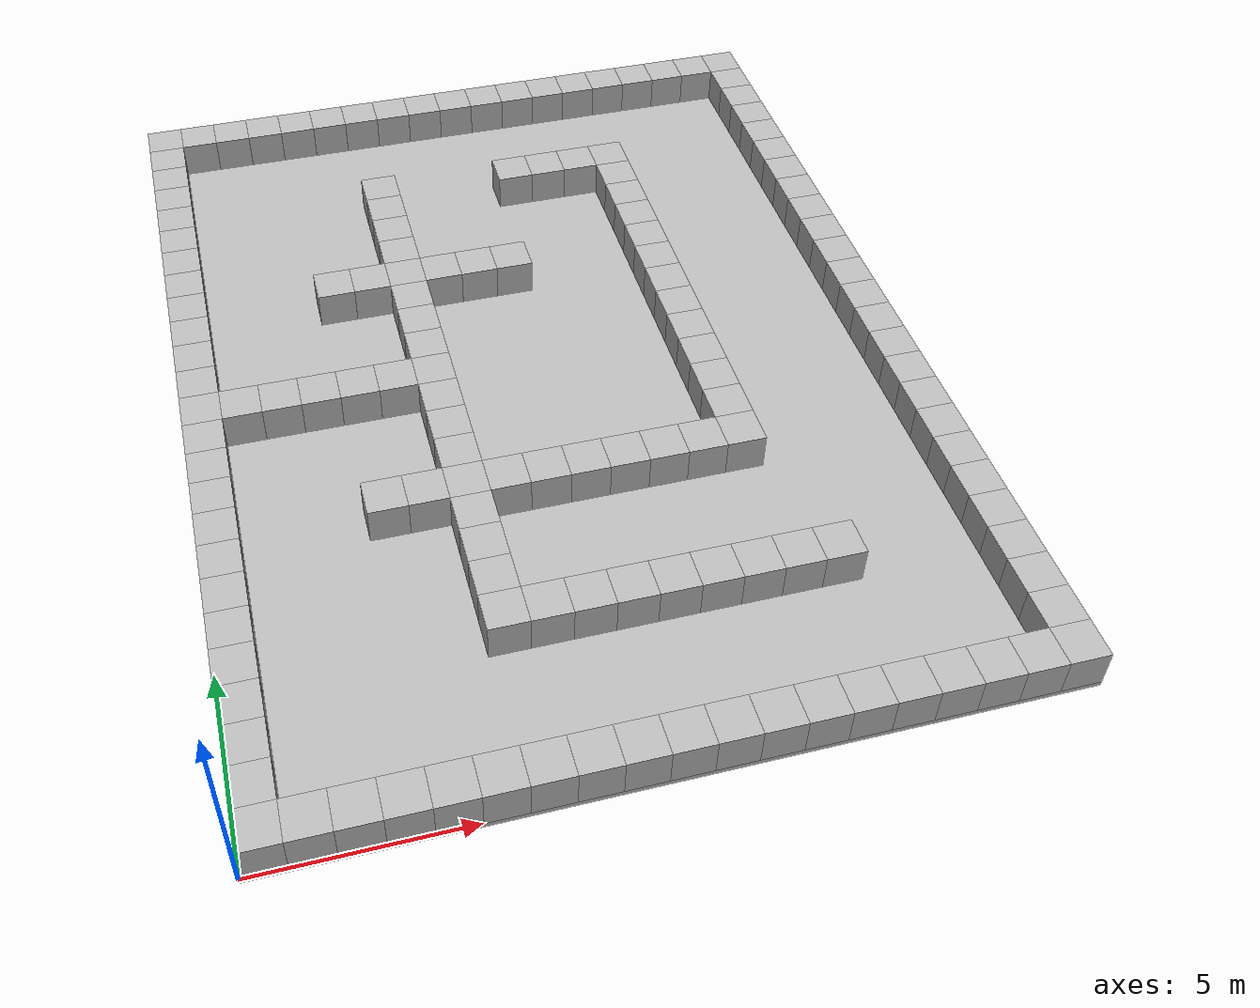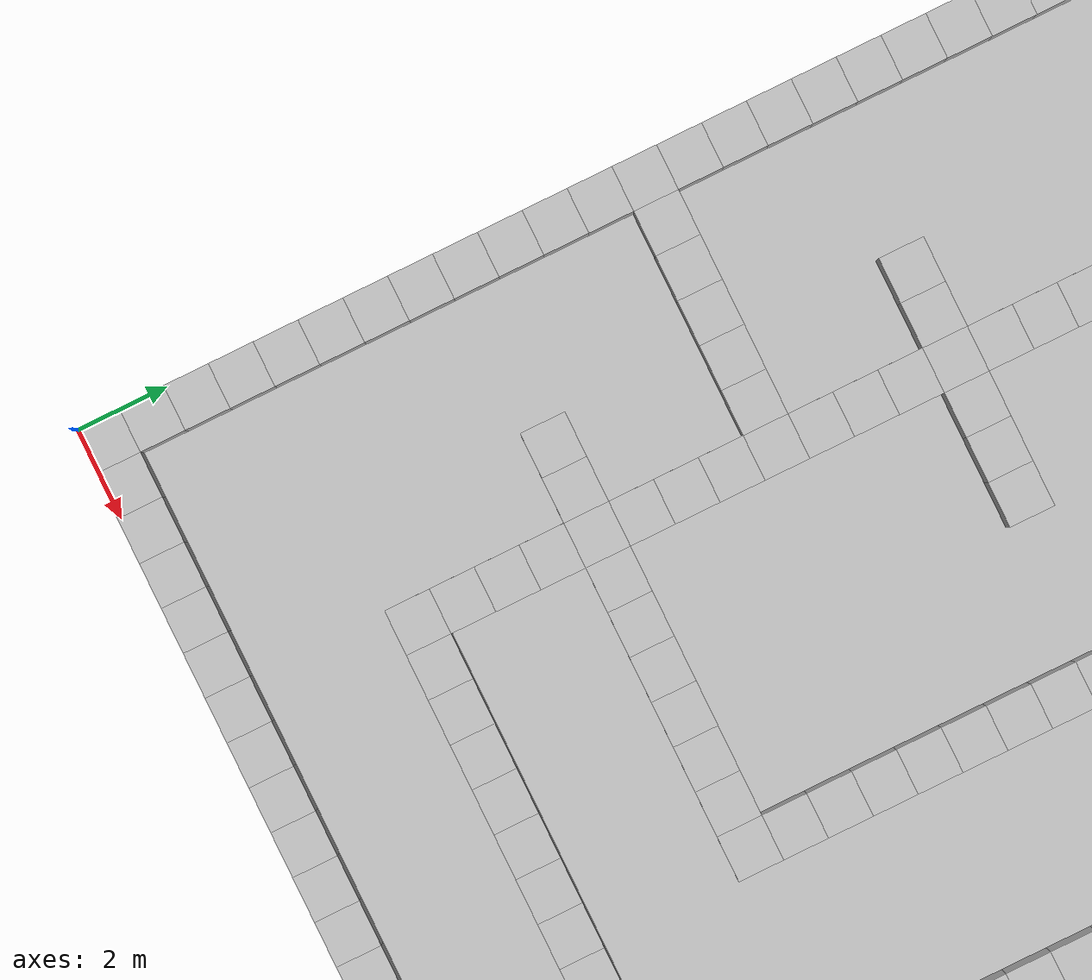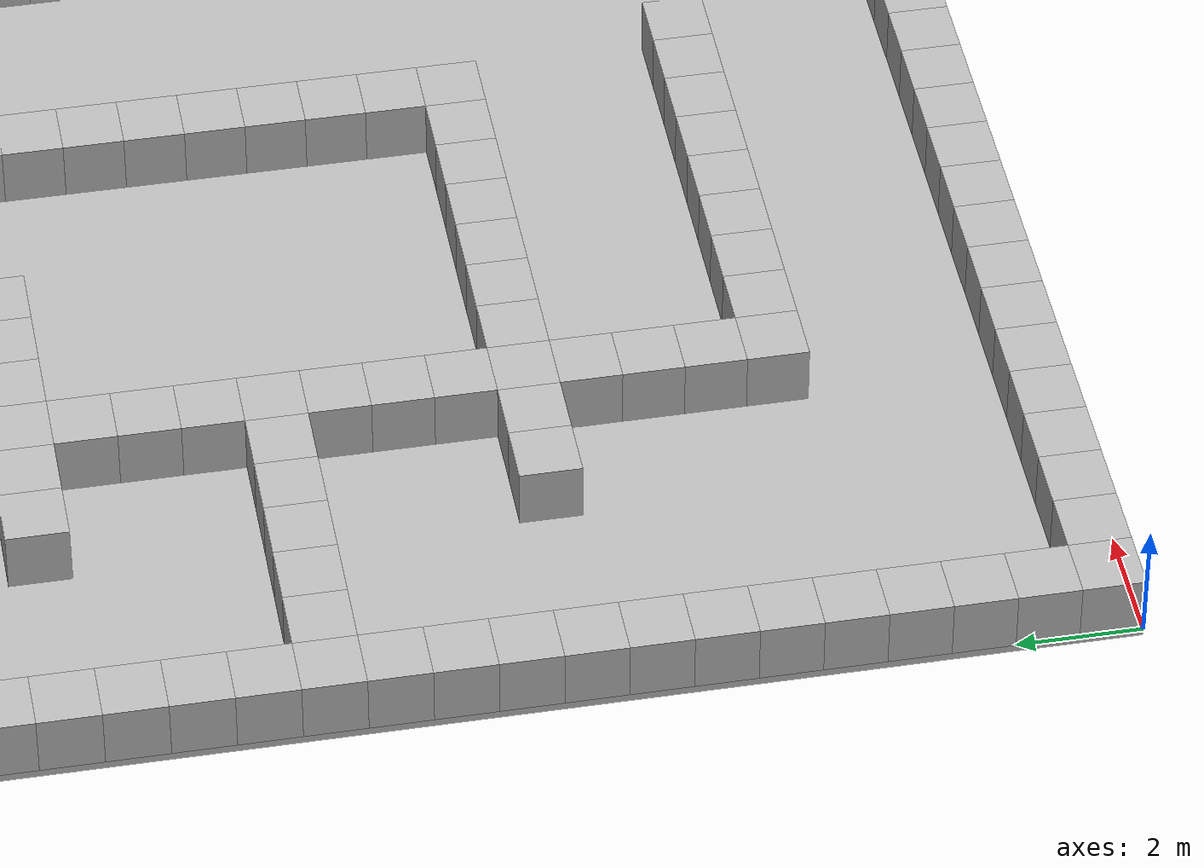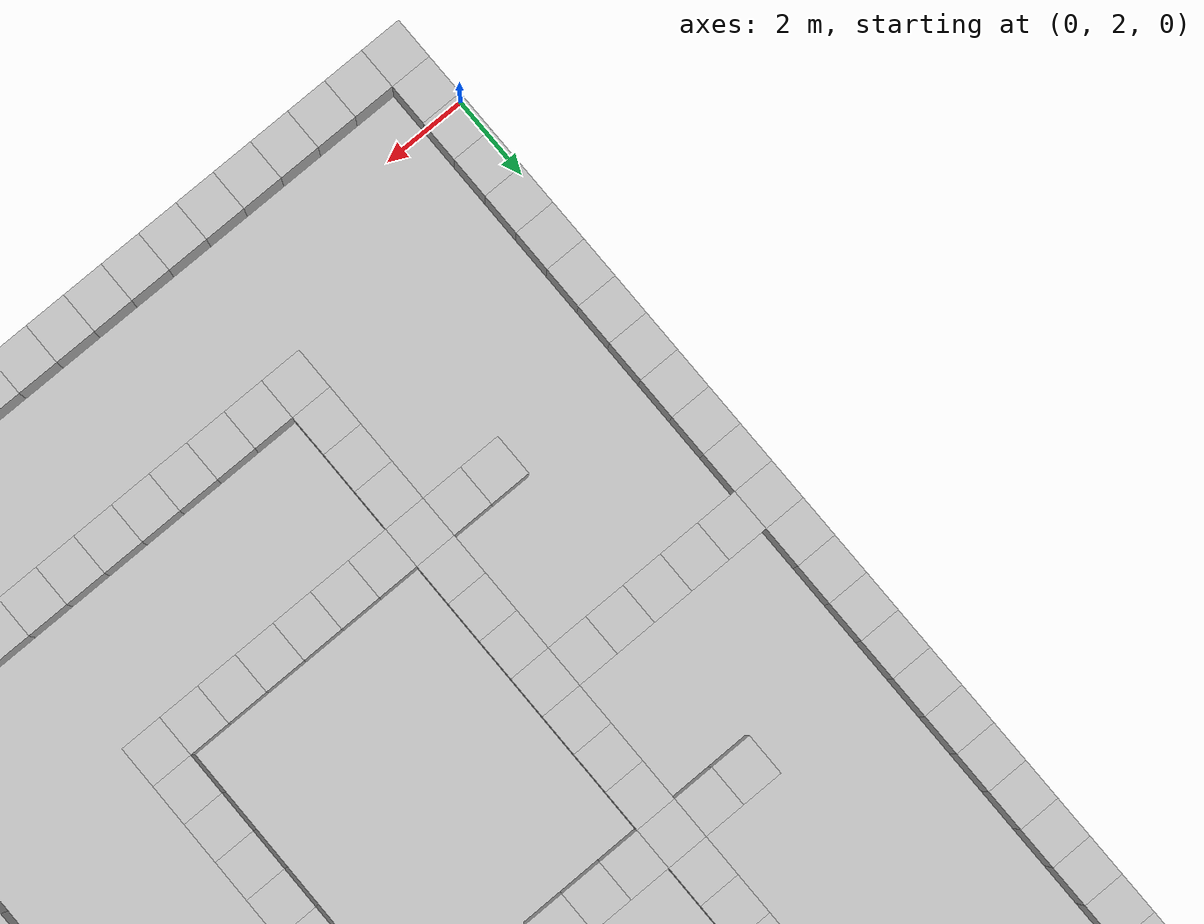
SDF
<sdf version="1.4">
 <world name="default">
  <model name="floor">
   <pose>9.5 12.5 -0.0625 0 0 0</pose>
   <static>true</static>
   <link name="link">
    <collision name="collision"><geometry><box><size>19.0 25.0 0.125</size></box></geometry></collision>
    <visual name="visual"><geometry><box><size>19.0 25.0 0.125</size></box></geometry></visual>
   </link>
  </model>
  <model name="box_0_0">
   <pose>0.5 0.5 0.5 0 0 0</pose>
   <static>true</static>
   <link name="link">
    <collision name="collision"><geometry><box><size>1.0 1.0 1.0</size></box></geometry></collision>
    <visual name="visual"><geometry><box><size>1.0 1.0 1.0</size></box></geometry></visual>
   </link>
  </model>
  <model name="box_0_1">
   <pose>0.5 1.5 0.5 0 0 0</pose>
   <static>true</static>
   <link name="link">
    <collision name="collision"><geometry><box><size>1.0 1.0 1.0</size></box></geometry></collision>
    <visual name="visual"><geometry><box><size>1.0 1.0 1.0</size></box></geometry></visual>
   </link>
  </model>
  <model name="box_0_2">
   <pose>0.5 2.5 0.5 0 0 0</pose>
   <static>true</static>
   <link name="link">
    <collision name="collision"><geometry><box><size>1.0 1.0 1.0</size></box></geometry></collision>
    <visual name="visual"><geometry><box><size>1.0 1.0 1.0</size></box></geometry></visual>
   </link>
  </model>
  <model name="box_0_3">
   <pose>0.5 3.5 0.5 0 0 0</pose>
   <static>true</static>
   <link name="link">
    <collision name="collision"><geometry><box><size>1.0 1.0 1.0</size></box></geometry></collision>
    <visual name="visual"><geometry><box><size>1.0 1.0 1.0</size></box></geometry></visual>
   </link>
  </model>
  <model name="box_0_4">
   <pose>0.5 4.5 0.5 0 0 0</pose>
   <static>true</static>
   <link name="link">
    <collision name="collision"><geometry><box><size>1.0 1.0 1.0</size></box></geometry></collision>
    <visual name="visual"><geometry><box><size>1.0 1.0 1.0</size></box></geometry></visual>
   </link>
  </model>
  <model name="box_0_5">
   <pose>0.5 5.5 0.5 0 0 0</pose>
   <static>true</static>
   <link name="link">
    <collision name="collision"><geometry><box><size>1.0 1.0 1.0</size></box></geometry></collision>
    <visual name="visual"><geometry><box><size>1.0 1.0 1.0</size></box></geometry></visual>
   </link>
  </model>
  <model name="box_0_6">
   <pose>0.5 6.5 0.5 0 0 0</pose>
   <static>true</static>
   <link name="link">
    <collision name="collision"><geometry><box><size>1.0 1.0 1.0</size></box></geometry></collision>
    <visual name="visual"><geometry><box><size>1.0 1.0 1.0</size></box></geometry></visual>
   </link>
  </model>
  <model name="box_0_7">
   <pose>0.5 7.5 0.5 0 0 0</pose>
   <static>true</static>
   <link name="link">
    <collision name="collision"><geometry><box><size>1.0 1.0 1.0</size></box></geometry></collision>
    <visual name="visual"><geometry><box><size>1.0 1.0 1.0</size></box></geometry></visual>
   </link>
  </model>
  <model name="box_0_8">
   <pose>0.5 8.5 0.5 0 0 0</pose>
   <static>true</static>
   <link name="link">
    <collision name="collision"><geometry><box><size>1.0 1.0 1.0</size></box></geometry></collision>
    <visual name="visual"><geometry><box><size>1.0 1.0 1.0</size></box></geometry></visual>
   </link>
  </model>
  <model name="box_0_9">
   <pose>0.5 9.5 0.5 0 0 0</pose>
   <static>true</static>
   <link name="link">
    <collision name="collision"><geometry><box><size>1.0 1.0 1.0</size></box></geometry></collision>
    <visual name="visual"><geometry><box><size>1.0 1.0 1.0</size></box></geometry></visual>
   </link>
  </model>
  <model name="box_0_10">
   <pose>0.5 10.5 0.5 0 0 0</pose>
   <static>true</static>
   <link name="link">
    <collision name="collision"><geometry><box><size>1.0 1.0 1.0</size></box></geometry></collision>
    <visual name="visual"><geometry><box><size>1.0 1.0 1.0</size></box></geometry></visual>
   </link>
  </model>
  <model name="box_0_11">
   <pose>0.5 11.5 0.5 0 0 0</pose>
   <static>true</static>
   <link name="link">
    <collision name="collision"><geometry><box><size>1.0 1.0 1.0</size></box></geometry></collision>
    <visual name="visual"><geometry><box><size>1.0 1.0 1.0</size></box></geometry></visual>
   </link>
  </model>
  <model name="box_0_12">
   <pose>0.5 12.5 0.5 0 0 0</pose>
   <static>true</static>
   <link name="link">
    <collision name="collision"><geometry><box><size>1.0 1.0 1.0</size></box></geometry></collision>
    <visual name="visual"><geometry><box><size>1.0 1.0 1.0</size></box></geometry></visual>
   </link>
  </model>
  <model name="box_0_13">
   <pose>0.5 13.5 0.5 0 0 0</pose>
   <static>true</static>
   <link name="link">
    <collision name="collision"><geometry><box><size>1.0 1.0 1.0</size></box></geometry></collision>
    <visual name="visual"><geometry><box><size>1.0 1.0 1.0</size></box></geometry></visual>
   </link>
  </model>
  <model name="box_0_14">
   <pose>0.5 14.5 0.5 0 0 0</pose>
   <static>true</static>
   <link name="link">
    <collision name="collision"><geometry><box><size>1.0 1.0 1.0</size></box></geometry></collision>
    <visual name="visual"><geometry><box><size>1.0 1.0 1.0</size></box></geometry></visual>
   </link>
  </model>
  <model name="box_0_15">
   <pose>0.5 15.5 0.5 0 0 0</pose>
   <static>true</static>
   <link name="link">
    <collision name="collision"><geometry><box><size>1.0 1.0 1.0</size></box></geometry></collision>
    <visual name="visual"><geometry><box><size>1.0 1.0 1.0</size></box></geometry></visual>
   </link>
  </model>
  <model name="box_0_16">
   <pose>0.5 16.5 0.5 0 0 0</pose>
   <static>true</static>
   <link name="link">
    <collision name="collision"><geometry><box><size>1.0 1.0 1.0</size></box></geometry></collision>
    <visual name="visual"><geometry><box><size>1.0 1.0 1.0</size></box></geometry></visual>
   </link>
  </model>
  <model name="box_0_17">
   <pose>0.5 17.5 0.5 0 0 0</pose>
   <static>true</static>
   <link name="link">
    <collision name="collision"><geometry><box><size>1.0 1.0 1.0</size></box></geometry></collision>
    <visual name="visual"><geometry><box><size>1.0 1.0 1.0</size></box></geometry></visual>
   </link>
  </model>
  <model name="box_0_18">
   <pose>0.5 18.5 0.5 0 0 0</pose>
   <static>true</static>
   <link name="link">
    <collision name="collision"><geometry><box><size>1.0 1.0 1.0</size></box></geometry></collision>
    <visual name="visual"><geometry><box><size>1.0 1.0 1.0</size></box></geometry></visual>
   </link>
  </model>
  <model name="box_0_19">
   <pose>0.5 19.5 0.5 0 0 0</pose>
   <static>true</static>
   <link name="link">
    <collision name="collision"><geometry><box><size>1.0 1.0 1.0</size></box></geometry></collision>
    <visual name="visual"><geometry><box><size>1.0 1.0 1.0</size></box></geometry></visual>
   </link>
  </model>
  <model name="box_0_20">
   <pose>0.5 20.5 0.5 0 0 0</pose>
   <static>true</static>
   <link name="link">
    <collision name="collision"><geometry><box><size>1.0 1.0 1.0</size></box></geometry></collision>
    <visual name="visual"><geometry><box><size>1.0 1.0 1.0</size></box></geometry></visual>
   </link>
  </model>
  <model name="box_0_21">
   <pose>0.5 21.5 0.5 0 0 0</pose>
   <static>true</static>
   <link name="link">
    <collision name="collision"><geometry><box><size>1.0 1.0 1.0</size></box></geometry></collision>
    <visual name="visual"><geometry><box><size>1.0 1.0 1.0</size></box></geometry></visual>
   </link>
  </model>
  <model name="box_0_22">
   <pose>0.5 22.5 0.5 0 0 0</pose>
   <static>true</static>
   <link name="link">
    <collision name="collision"><geometry><box><size>1.0 1.0 1.0</size></box></geometry></collision>
    <visual name="visual"><geometry><box><size>1.0 1.0 1.0</size></box></geometry></visual>
   </link>
  </model>
  <model name="box_0_23">
   <pose>0.5 23.5 0.5 0 0 0</pose>
   <static>true</static>
   <link name="link">
    <collision name="collision"><geometry><box><size>1.0 1.0 1.0</size></box></geometry></collision>
    <visual name="visual"><geometry><box><size>1.0 1.0 1.0</size></box></geometry></visual>
   </link>
  </model>
  <model name="box_0_24">
   <pose>0.5 24.5 0.5 0 0 0</pose>
   <static>true</static>
   <link name="link">
    <collision name="collision"><geometry><box><size>1.0 1.0 1.0</size></box></geometry></collision>
    <visual name="visual"><geometry><box><size>1.0 1.0 1.0</size></box></geometry></visual>
   </link>
  </model>
  <model name="box_1_0">
   <pose>1.5 0.5 0.5 0 0 0</pose>
   <static>true</static>
   <link name="link">
    <collision name="collision"><geometry><box><size>1.0 1.0 1.0</size></box></geometry></collision>
    <visual name="visual"><geometry><box><size>1.0 1.0 1.0</size></box></geometry></visual>
   </link>
  </model>
  <model name="box_1_12">
   <pose>1.5 12.5 0.5 0 0 0</pose>
   <static>true</static>
   <link name="link">
    <collision name="collision"><geometry><box><size>1.0 1.0 1.0</size></box></geometry></collision>
    <visual name="visual"><geometry><box><size>1.0 1.0 1.0</size></box></geometry></visual>
   </link>
  </model>
  <model name="box_1_24">
   <pose>1.5 24.5 0.5 0 0 0</pose>
   <static>true</static>
   <link name="link">
    <collision name="collision"><geometry><box><size>1.0 1.0 1.0</size></box></geometry></collision>
    <visual name="visual"><geometry><box><size>1.0 1.0 1.0</size></box></geometry></visual>
   </link>
  </model>
  <model name="box_2_0">
   <pose>2.5 0.5 0.5 0 0 0</pose>
   <static>true</static>
   <link name="link">
    <collision name="collision"><geometry><box><size>1.0 1.0 1.0</size></box></geometry></collision>
    <visual name="visual"><geometry><box><size>1.0 1.0 1.0</size></box></geometry></visual>
   </link>
  </model>
  <model name="box_2_12">
   <pose>2.5 12.5 0.5 0 0 0</pose>
   <static>true</static>
   <link name="link">
    <collision name="collision"><geometry><box><size>1.0 1.0 1.0</size></box></geometry></collision>
    <visual name="visual"><geometry><box><size>1.0 1.0 1.0</size></box></geometry></visual>
   </link>
  </model>
  <model name="box_2_24">
   <pose>2.5 24.5 0.5 0 0 0</pose>
   <static>true</static>
   <link name="link">
    <collision name="collision"><geometry><box><size>1.0 1.0 1.0</size></box></geometry></collision>
    <visual name="visual"><geometry><box><size>1.0 1.0 1.0</size></box></geometry></visual>
   </link>
  </model>
  <model name="box_3_0">
   <pose>3.5 0.5 0.5 0 0 0</pose>
   <static>true</static>
   <link name="link">
    <collision name="collision"><geometry><box><size>1.0 1.0 1.0</size></box></geometry></collision>
    <visual name="visual"><geometry><box><size>1.0 1.0 1.0</size></box></geometry></visual>
   </link>
  </model>
  <model name="box_3_12">
   <pose>3.5 12.5 0.5 0 0 0</pose>
   <static>true</static>
   <link name="link">
    <collision name="collision"><geometry><box><size>1.0 1.0 1.0</size></box></geometry></collision>
    <visual name="visual"><geometry><box><size>1.0 1.0 1.0</size></box></geometry></visual>
   </link>
  </model>
  <model name="box_3_24">
   <pose>3.5 24.5 0.5 0 0 0</pose>
   <static>true</static>
   <link name="link">
    <collision name="collision"><geometry><box><size>1.0 1.0 1.0</size></box></geometry></collision>
    <visual name="visual"><geometry><box><size>1.0 1.0 1.0</size></box></geometry></visual>
   </link>
  </model>
  <model name="box_4_0">
   <pose>4.5 0.5 0.5 0 0 0</pose>
   <static>true</static>
   <link name="link">
    <collision name="collision"><geometry><box><size>1.0 1.0 1.0</size></box></geometry></collision>
    <visual name="visual"><geometry><box><size>1.0 1.0 1.0</size></box></geometry></visual>
   </link>
  </model>
  <model name="box_4_8">
   <pose>4.5 8.5 0.5 0 0 0</pose>
   <static>true</static>
   <link name="link">
    <collision name="collision"><geometry><box><size>1.0 1.0 1.0</size></box></geometry></collision>
    <visual name="visual"><geometry><box><size>1.0 1.0 1.0</size></box></geometry></visual>
   </link>
  </model>
  <model name="box_4_12">
   <pose>4.5 12.5 0.5 0 0 0</pose>
   <static>true</static>
   <link name="link">
    <collision name="collision"><geometry><box><size>1.0 1.0 1.0</size></box></geometry></collision>
    <visual name="visual"><geometry><box><size>1.0 1.0 1.0</size></box></geometry></visual>
   </link>
  </model>
  <model name="box_4_16">
   <pose>4.5 16.5 0.5 0 0 0</pose>
   <static>true</static>
   <link name="link">
    <collision name="collision"><geometry><box><size>1.0 1.0 1.0</size></box></geometry></collision>
    <visual name="visual"><geometry><box><size>1.0 1.0 1.0</size></box></geometry></visual>
   </link>
  </model>
  <model name="box_4_24">
   <pose>4.5 24.5 0.5 0 0 0</pose>
   <static>true</static>
   <link name="link">
    <collision name="collision"><geometry><box><size>1.0 1.0 1.0</size></box></geometry></collision>
    <visual name="visual"><geometry><box><size>1.0 1.0 1.0</size></box></geometry></visual>
   </link>
  </model>
  <model name="box_5_0">
   <pose>5.5 0.5 0.5 0 0 0</pose>
   <static>true</static>
   <link name="link">
    <collision name="collision"><geometry><box><size>1.0 1.0 1.0</size></box></geometry></collision>
    <visual name="visual"><geometry><box><size>1.0 1.0 1.0</size></box></geometry></visual>
   </link>
  </model>
  <model name="box_5_8">
   <pose>5.5 8.5 0.5 0 0 0</pose>
   <static>true</static>
   <link name="link">
    <collision name="collision"><geometry><box><size>1.0 1.0 1.0</size></box></geometry></collision>
    <visual name="visual"><geometry><box><size>1.0 1.0 1.0</size></box></geometry></visual>
   </link>
  </model>
  <model name="box_5_12">
   <pose>5.5 12.5 0.5 0 0 0</pose>
   <static>true</static>
   <link name="link">
    <collision name="collision"><geometry><box><size>1.0 1.0 1.0</size></box></geometry></collision>
    <visual name="visual"><geometry><box><size>1.0 1.0 1.0</size></box></geometry></visual>
   </link>
  </model>
  <model name="box_5_16">
   <pose>5.5 16.5 0.5 0 0 0</pose>
   <static>true</static>
   <link name="link">
    <collision name="collision"><geometry><box><size>1.0 1.0 1.0</size></box></geometry></collision>
    <visual name="visual"><geometry><box><size>1.0 1.0 1.0</size></box></geometry></visual>
   </link>
  </model>
  <model name="box_5_24">
   <pose>5.5 24.5 0.5 0 0 0</pose>
   <static>true</static>
   <link name="link">
    <collision name="collision"><geometry><box><size>1.0 1.0 1.0</size></box></geometry></collision>
    <visual name="visual"><geometry><box><size>1.0 1.0 1.0</size></box></geometry></visual>
   </link>
  </model>
  <model name="box_6_0">
   <pose>6.5 0.5 0.5 0 0 0</pose>
   <static>true</static>
   <link name="link">
    <collision name="collision"><geometry><box><size>1.0 1.0 1.0</size></box></geometry></collision>
    <visual name="visual"><geometry><box><size>1.0 1.0 1.0</size></box></geometry></visual>
   </link>
  </model>
  <model name="box_6_4">
   <pose>6.5 4.5 0.5 0 0 0</pose>
   <static>true</static>
   <link name="link">
    <collision name="collision"><geometry><box><size>1.0 1.0 1.0</size></box></geometry></collision>
    <visual name="visual"><geometry><box><size>1.0 1.0 1.0</size></box></geometry></visual>
   </link>
  </model>
  <model name="box_6_5">
   <pose>6.5 5.5 0.5 0 0 0</pose>
   <static>true</static>
   <link name="link">
    <collision name="collision"><geometry><box><size>1.0 1.0 1.0</size></box></geometry></collision>
    <visual name="visual"><geometry><box><size>1.0 1.0 1.0</size></box></geometry></visual>
   </link>
  </model>
  <model name="box_6_6">
   <pose>6.5 6.5 0.5 0 0 0</pose>
   <static>true</static>
   <link name="link">
    <collision name="collision"><geometry><box><size>1.0 1.0 1.0</size></box></geometry></collision>
    <visual name="visual"><geometry><box><size>1.0 1.0 1.0</size></box></geometry></visual>
   </link>
  </model>
  <model name="box_6_7">
   <pose>6.5 7.5 0.5 0 0 0</pose>
   <static>true</static>
   <link name="link">
    <collision name="collision"><geometry><box><size>1.0 1.0 1.0</size></box></geometry></collision>
    <visual name="visual"><geometry><box><size>1.0 1.0 1.0</size></box></geometry></visual>
   </link>
  </model>
  <model name="box_6_8">
   <pose>6.5 8.5 0.5 0 0 0</pose>
   <static>true</static>
   <link name="link">
    <collision name="collision"><geometry><box><size>1.0 1.0 1.0</size></box></geometry></collision>
    <visual name="visual"><geometry><box><size>1.0 1.0 1.0</size></box></geometry></visual>
   </link>
  </model>
  <model name="box_6_9">
   <pose>6.5 9.5 0.5 0 0 0</pose>
   <static>true</static>
   <link name="link">
    <collision name="collision"><geometry><box><size>1.0 1.0 1.0</size></box></geometry></collision>
    <visual name="visual"><geometry><box><size>1.0 1.0 1.0</size></box></geometry></visual>
   </link>
  </model>
  <model name="box_6_10">
   <pose>6.5 10.5 0.5 0 0 0</pose>
   <static>true</static>
   <link name="link">
    <collision name="collision"><geometry><box><size>1.0 1.0 1.0</size></box></geometry></collision>
    <visual name="visual"><geometry><box><size>1.0 1.0 1.0</size></box></geometry></visual>
   </link>
  </model>
  <model name="box_6_11">
   <pose>6.5 11.5 0.5 0 0 0</pose>
   <static>true</static>
   <link name="link">
    <collision name="collision"><geometry><box><size>1.0 1.0 1.0</size></box></geometry></collision>
    <visual name="visual"><geometry><box><size>1.0 1.0 1.0</size></box></geometry></visual>
   </link>
  </model>
  <model name="box_6_12">
   <pose>6.5 12.5 0.5 0 0 0</pose>
   <static>true</static>
   <link name="link">
    <collision name="collision"><geometry><box><size>1.0 1.0 1.0</size></box></geometry></collision>
    <visual name="visual"><geometry><box><size>1.0 1.0 1.0</size></box></geometry></visual>
   </link>
  </model>
  <model name="box_6_13">
   <pose>6.5 13.5 0.5 0 0 0</pose>
   <static>true</static>
   <link name="link">
    <collision name="collision"><geometry><box><size>1.0 1.0 1.0</size></box></geometry></collision>
    <visual name="visual"><geometry><box><size>1.0 1.0 1.0</size></box></geometry></visual>
   </link>
  </model>
  <model name="box_6_14">
   <pose>6.5 14.5 0.5 0 0 0</pose>
   <static>true</static>
   <link name="link">
    <collision name="collision"><geometry><box><size>1.0 1.0 1.0</size></box></geometry></collision>
    <visual name="visual"><geometry><box><size>1.0 1.0 1.0</size></box></geometry></visual>
   </link>
  </model>
  <model name="box_6_15">
   <pose>6.5 15.5 0.5 0 0 0</pose>
   <static>true</static>
   <link name="link">
    <collision name="collision"><geometry><box><size>1.0 1.0 1.0</size></box></geometry></collision>
    <visual name="visual"><geometry><box><size>1.0 1.0 1.0</size></box></geometry></visual>
   </link>
  </model>
  <model name="box_6_16">
   <pose>6.5 16.5 0.5 0 0 0</pose>
   <static>true</static>
   <link name="link">
    <collision name="collision"><geometry><box><size>1.0 1.0 1.0</size></box></geometry></collision>
    <visual name="visual"><geometry><box><size>1.0 1.0 1.0</size></box></geometry></visual>
   </link>
  </model>
  <model name="box_6_17">
   <pose>6.5 17.5 0.5 0 0 0</pose>
   <static>true</static>
   <link name="link">
    <collision name="collision"><geometry><box><size>1.0 1.0 1.0</size></box></geometry></collision>
    <visual name="visual"><geometry><box><size>1.0 1.0 1.0</size></box></geometry></visual>
   </link>
  </model>
  <model name="box_6_18">
   <pose>6.5 18.5 0.5 0 0 0</pose>
   <static>true</static>
   <link name="link">
    <collision name="collision"><geometry><box><size>1.0 1.0 1.0</size></box></geometry></collision>
    <visual name="visual"><geometry><box><size>1.0 1.0 1.0</size></box></geometry></visual>
   </link>
  </model>
  <model name="box_6_19">
   <pose>6.5 19.5 0.5 0 0 0</pose>
   <static>true</static>
   <link name="link">
    <collision name="collision"><geometry><box><size>1.0 1.0 1.0</size></box></geometry></collision>
    <visual name="visual"><geometry><box><size>1.0 1.0 1.0</size></box></geometry></visual>
   </link>
  </model>
  <model name="box_6_20">
   <pose>6.5 20.5 0.5 0 0 0</pose>
   <static>true</static>
   <link name="link">
    <collision name="collision"><geometry><box><size>1.0 1.0 1.0</size></box></geometry></collision>
    <visual name="visual"><geometry><box><size>1.0 1.0 1.0</size></box></geometry></visual>
   </link>
  </model>
  <model name="box_6_24">
   <pose>6.5 24.5 0.5 0 0 0</pose>
   <static>true</static>
   <link name="link">
    <collision name="collision"><geometry><box><size>1.0 1.0 1.0</size></box></geometry></collision>
    <visual name="visual"><geometry><box><size>1.0 1.0 1.0</size></box></geometry></visual>
   </link>
  </model>
  <model name="box_7_0">
   <pose>7.5 0.5 0.5 0 0 0</pose>
   <static>true</static>
   <link name="link">
    <collision name="collision"><geometry><box><size>1.0 1.0 1.0</size></box></geometry></collision>
    <visual name="visual"><geometry><box><size>1.0 1.0 1.0</size></box></geometry></visual>
   </link>
  </model>
  <model name="box_7_4">
   <pose>7.5 4.5 0.5 0 0 0</pose>
   <static>true</static>
   <link name="link">
    <collision name="collision"><geometry><box><size>1.0 1.0 1.0</size></box></geometry></collision>
    <visual name="visual"><geometry><box><size>1.0 1.0 1.0</size></box></geometry></visual>
   </link>
  </model>
  <model name="box_7_8">
   <pose>7.5 8.5 0.5 0 0 0</pose>
   <static>true</static>
   <link name="link">
    <collision name="collision"><geometry><box><size>1.0 1.0 1.0</size></box></geometry></collision>
    <visual name="visual"><geometry><box><size>1.0 1.0 1.0</size></box></geometry></visual>
   </link>
  </model>
  <model name="box_7_16">
   <pose>7.5 16.5 0.5 0 0 0</pose>
   <static>true</static>
   <link name="link">
    <collision name="collision"><geometry><box><size>1.0 1.0 1.0</size></box></geometry></collision>
    <visual name="visual"><geometry><box><size>1.0 1.0 1.0</size></box></geometry></visual>
   </link>
  </model>
  <model name="box_7_24">
   <pose>7.5 24.5 0.5 0 0 0</pose>
   <static>true</static>
   <link name="link">
    <collision name="collision"><geometry><box><size>1.0 1.0 1.0</size></box></geometry></collision>
    <visual name="visual"><geometry><box><size>1.0 1.0 1.0</size></box></geometry></visual>
   </link>
  </model>
  <model name="box_8_0">
   <pose>8.5 0.5 0.5 0 0 0</pose>
   <static>true</static>
   <link name="link">
    <collision name="collision"><geometry><box><size>1.0 1.0 1.0</size></box></geometry></collision>
    <visual name="visual"><geometry><box><size>1.0 1.0 1.0</size></box></geometry></visual>
   </link>
  </model>
  <model name="box_8_4">
   <pose>8.5 4.5 0.5 0 0 0</pose>
   <static>true</static>
   <link name="link">
    <collision name="collision"><geometry><box><size>1.0 1.0 1.0</size></box></geometry></collision>
    <visual name="visual"><geometry><box><size>1.0 1.0 1.0</size></box></geometry></visual>
   </link>
  </model>
  <model name="box_8_8">
   <pose>8.5 8.5 0.5 0 0 0</pose>
   <static>true</static>
   <link name="link">
    <collision name="collision"><geometry><box><size>1.0 1.0 1.0</size></box></geometry></collision>
    <visual name="visual"><geometry><box><size>1.0 1.0 1.0</size></box></geometry></visual>
   </link>
  </model>
  <model name="box_8_16">
   <pose>8.5 16.5 0.5 0 0 0</pose>
   <static>true</static>
   <link name="link">
    <collision name="collision"><geometry><box><size>1.0 1.0 1.0</size></box></geometry></collision>
    <visual name="visual"><geometry><box><size>1.0 1.0 1.0</size></box></geometry></visual>
   </link>
  </model>
  <model name="box_8_24">
   <pose>8.5 24.5 0.5 0 0 0</pose>
   <static>true</static>
   <link name="link">
    <collision name="collision"><geometry><box><size>1.0 1.0 1.0</size></box></geometry></collision>
    <visual name="visual"><geometry><box><size>1.0 1.0 1.0</size></box></geometry></visual>
   </link>
  </model>
  <model name="box_9_0">
   <pose>9.5 0.5 0.5 0 0 0</pose>
   <static>true</static>
   <link name="link">
    <collision name="collision"><geometry><box><size>1.0 1.0 1.0</size></box></geometry></collision>
    <visual name="visual"><geometry><box><size>1.0 1.0 1.0</size></box></geometry></visual>
   </link>
  </model>
  <model name="box_9_4">
   <pose>9.5 4.5 0.5 0 0 0</pose>
   <static>true</static>
   <link name="link">
    <collision name="collision"><geometry><box><size>1.0 1.0 1.0</size></box></geometry></collision>
    <visual name="visual"><geometry><box><size>1.0 1.0 1.0</size></box></geometry></visual>
   </link>
  </model>
  <model name="box_9_8">
   <pose>9.5 8.5 0.5 0 0 0</pose>
   <static>true</static>
   <link name="link">
    <collision name="collision"><geometry><box><size>1.0 1.0 1.0</size></box></geometry></collision>
    <visual name="visual"><geometry><box><size>1.0 1.0 1.0</size></box></geometry></visual>
   </link>
  </model>
  <model name="box_9_16">
   <pose>9.5 16.5 0.5 0 0 0</pose>
   <static>true</static>
   <link name="link">
    <collision name="collision"><geometry><box><size>1.0 1.0 1.0</size></box></geometry></collision>
    <visual name="visual"><geometry><box><size>1.0 1.0 1.0</size></box></geometry></visual>
   </link>
  </model>
  <model name="box_9_24">
   <pose>9.5 24.5 0.5 0 0 0</pose>
   <static>true</static>
   <link name="link">
    <collision name="collision"><geometry><box><size>1.0 1.0 1.0</size></box></geometry></collision>
    <visual name="visual"><geometry><box><size>1.0 1.0 1.0</size></box></geometry></visual>
   </link>
  </model>
  <model name="box_10_0">
   <pose>10.5 0.5 0.5 0 0 0</pose>
   <static>true</static>
   <link name="link">
    <collision name="collision"><geometry><box><size>1.0 1.0 1.0</size></box></geometry></collision>
    <visual name="visual"><geometry><box><size>1.0 1.0 1.0</size></box></geometry></visual>
   </link>
  </model>
  <model name="box_10_4">
   <pose>10.5 4.5 0.5 0 0 0</pose>
   <static>true</static>
   <link name="link">
    <collision name="collision"><geometry><box><size>1.0 1.0 1.0</size></box></geometry></collision>
    <visual name="visual"><geometry><box><size>1.0 1.0 1.0</size></box></geometry></visual>
   </link>
  </model>
  <model name="box_10_8">
   <pose>10.5 8.5 0.5 0 0 0</pose>
   <static>true</static>
   <link name="link">
    <collision name="collision"><geometry><box><size>1.0 1.0 1.0</size></box></geometry></collision>
    <visual name="visual"><geometry><box><size>1.0 1.0 1.0</size></box></geometry></visual>
   </link>
  </model>
  <model name="box_10_20">
   <pose>10.5 20.5 0.5 0 0 0</pose>
   <static>true</static>
   <link name="link">
    <collision name="collision"><geometry><box><size>1.0 1.0 1.0</size></box></geometry></collision>
    <visual name="visual"><geometry><box><size>1.0 1.0 1.0</size></box></geometry></visual>
   </link>
  </model>
  <model name="box_10_24">
   <pose>10.5 24.5 0.5 0 0 0</pose>
   <static>true</static>
   <link name="link">
    <collision name="collision"><geometry><box><size>1.0 1.0 1.0</size></box></geometry></collision>
    <visual name="visual"><geometry><box><size>1.0 1.0 1.0</size></box></geometry></visual>
   </link>
  </model>
  <model name="box_11_0">
   <pose>11.5 0.5 0.5 0 0 0</pose>
   <static>true</static>
   <link name="link">
    <collision name="collision"><geometry><box><size>1.0 1.0 1.0</size></box></geometry></collision>
    <visual name="visual"><geometry><box><size>1.0 1.0 1.0</size></box></geometry></visual>
   </link>
  </model>
  <model name="box_11_4">
   <pose>11.5 4.5 0.5 0 0 0</pose>
   <static>true</static>
   <link name="link">
    <collision name="collision"><geometry><box><size>1.0 1.0 1.0</size></box></geometry></collision>
    <visual name="visual"><geometry><box><size>1.0 1.0 1.0</size></box></geometry></visual>
   </link>
  </model>
  <model name="box_11_8">
   <pose>11.5 8.5 0.5 0 0 0</pose>
   <static>true</static>
   <link name="link">
    <collision name="collision"><geometry><box><size>1.0 1.0 1.0</size></box></geometry></collision>
    <visual name="visual"><geometry><box><size>1.0 1.0 1.0</size></box></geometry></visual>
   </link>
  </model>
  <model name="box_11_20">
   <pose>11.5 20.5 0.5 0 0 0</pose>
   <static>true</static>
   <link name="link">
    <collision name="collision"><geometry><box><size>1.0 1.0 1.0</size></box></geometry></collision>
    <visual name="visual"><geometry><box><size>1.0 1.0 1.0</size></box></geometry></visual>
   </link>
  </model>
  <model name="box_11_24">
   <pose>11.5 24.5 0.5 0 0 0</pose>
   <static>true</static>
   <link name="link">
    <collision name="collision"><geometry><box><size>1.0 1.0 1.0</size></box></geometry></collision>
    <visual name="visual"><geometry><box><size>1.0 1.0 1.0</size></box></geometry></visual>
   </link>
  </model>
  <model name="box_12_0">
   <pose>12.5 0.5 0.5 0 0 0</pose>
   <static>true</static>
   <link name="link">
    <collision name="collision"><geometry><box><size>1.0 1.0 1.0</size></box></geometry></collision>
    <visual name="visual"><geometry><box><size>1.0 1.0 1.0</size></box></geometry></visual>
   </link>
  </model>
  <model name="box_12_4">
   <pose>12.5 4.5 0.5 0 0 0</pose>
   <static>true</static>
   <link name="link">
    <collision name="collision"><geometry><box><size>1.0 1.0 1.0</size></box></geometry></collision>
    <visual name="visual"><geometry><box><size>1.0 1.0 1.0</size></box></geometry></visual>
   </link>
  </model>
  <model name="box_12_8">
   <pose>12.5 8.5 0.5 0 0 0</pose>
   <static>true</static>
   <link name="link">
    <collision name="collision"><geometry><box><size>1.0 1.0 1.0</size></box></geometry></collision>
    <visual name="visual"><geometry><box><size>1.0 1.0 1.0</size></box></geometry></visual>
   </link>
  </model>
  <model name="box_12_20">
   <pose>12.5 20.5 0.5 0 0 0</pose>
   <static>true</static>
   <link name="link">
    <collision name="collision"><geometry><box><size>1.0 1.0 1.0</size></box></geometry></collision>
    <visual name="visual"><geometry><box><size>1.0 1.0 1.0</size></box></geometry></visual>
   </link>
  </model>
  <model name="box_12_24">
   <pose>12.5 24.5 0.5 0 0 0</pose>
   <static>true</static>
   <link name="link">
    <collision name="collision"><geometry><box><size>1.0 1.0 1.0</size></box></geometry></collision>
    <visual name="visual"><geometry><box><size>1.0 1.0 1.0</size></box></geometry></visual>
   </link>
  </model>
  <model name="box_13_0">
   <pose>13.5 0.5 0.5 0 0 0</pose>
   <static>true</static>
   <link name="link">
    <collision name="collision"><geometry><box><size>1.0 1.0 1.0</size></box></geometry></collision>
    <visual name="visual"><geometry><box><size>1.0 1.0 1.0</size></box></geometry></visual>
   </link>
  </model>
  <model name="box_13_4">
   <pose>13.5 4.5 0.5 0 0 0</pose>
   <static>true</static>
   <link name="link">
    <collision name="collision"><geometry><box><size>1.0 1.0 1.0</size></box></geometry></collision>
    <visual name="visual"><geometry><box><size>1.0 1.0 1.0</size></box></geometry></visual>
   </link>
  </model>
  <model name="box_13_8">
   <pose>13.5 8.5 0.5 0 0 0</pose>
   <static>true</static>
   <link name="link">
    <collision name="collision"><geometry><box><size>1.0 1.0 1.0</size></box></geometry></collision>
    <visual name="visual"><geometry><box><size>1.0 1.0 1.0</size></box></geometry></visual>
   </link>
  </model>
  <model name="box_13_9">
   <pose>13.5 9.5 0.5 0 0 0</pose>
   <static>true</static>
   <link name="link">
    <collision name="collision"><geometry><box><size>1.0 1.0 1.0</size></box></geometry></collision>
    <visual name="visual"><geometry><box><size>1.0 1.0 1.0</size></box></geometry></visual>
   </link>
  </model>
  <model name="box_13_10">
   <pose>13.5 10.5 0.5 0 0 0</pose>
   <static>true</static>
   <link name="link">
    <collision name="collision"><geometry><box><size>1.0 1.0 1.0</size></box></geometry></collision>
    <visual name="visual"><geometry><box><size>1.0 1.0 1.0</size></box></geometry></visual>
   </link>
  </model>
  <model name="box_13_11">
   <pose>13.5 11.5 0.5 0 0 0</pose>
   <static>true</static>
   <link name="link">
    <collision name="collision"><geometry><box><size>1.0 1.0 1.0</size></box></geometry></collision>
    <visual name="visual"><geometry><box><size>1.0 1.0 1.0</size></box></geometry></visual>
   </link>
  </model>
  <model name="box_13_12">
   <pose>13.5 12.5 0.5 0 0 0</pose>
   <static>true</static>
   <link name="link">
    <collision name="collision"><geometry><box><size>1.0 1.0 1.0</size></box></geometry></collision>
    <visual name="visual"><geometry><box><size>1.0 1.0 1.0</size></box></geometry></visual>
   </link>
  </model>
  <model name="box_13_13">
   <pose>13.5 13.5 0.5 0 0 0</pose>
   <static>true</static>
   <link name="link">
    <collision name="collision"><geometry><box><size>1.0 1.0 1.0</size></box></geometry></collision>
    <visual name="visual"><geometry><box><size>1.0 1.0 1.0</size></box></geometry></visual>
   </link>
  </model>
  <model name="box_13_14">
   <pose>13.5 14.5 0.5 0 0 0</pose>
   <static>true</static>
   <link name="link">
    <collision name="collision"><geometry><box><size>1.0 1.0 1.0</size></box></geometry></collision>
    <visual name="visual"><geometry><box><size>1.0 1.0 1.0</size></box></geometry></visual>
   </link>
  </model>
  <model name="box_13_15">
   <pose>13.5 15.5 0.5 0 0 0</pose>
   <static>true</static>
   <link name="link">
    <collision name="collision"><geometry><box><size>1.0 1.0 1.0</size></box></geometry></collision>
    <visual name="visual"><geometry><box><size>1.0 1.0 1.0</size></box></geometry></visual>
   </link>
  </model>
  <model name="box_13_16">
   <pose>13.5 16.5 0.5 0 0 0</pose>
   <static>true</static>
   <link name="link">
    <collision name="collision"><geometry><box><size>1.0 1.0 1.0</size></box></geometry></collision>
    <visual name="visual"><geometry><box><size>1.0 1.0 1.0</size></box></geometry></visual>
   </link>
  </model>
  <model name="box_13_17">
   <pose>13.5 17.5 0.5 0 0 0</pose>
   <static>true</static>
   <link name="link">
    <collision name="collision"><geometry><box><size>1.0 1.0 1.0</size></box></geometry></collision>
    <visual name="visual"><geometry><box><size>1.0 1.0 1.0</size></box></geometry></visual>
   </link>
  </model>
  <model name="box_13_18">
   <pose>13.5 18.5 0.5 0 0 0</pose>
   <static>true</static>
   <link name="link">
    <collision name="collision"><geometry><box><size>1.0 1.0 1.0</size></box></geometry></collision>
    <visual name="visual"><geometry><box><size>1.0 1.0 1.0</size></box></geometry></visual>
   </link>
  </model>
  <model name="box_13_19">
   <pose>13.5 19.5 0.5 0 0 0</pose>
   <static>true</static>
   <link name="link">
    <collision name="collision"><geometry><box><size>1.0 1.0 1.0</size></box></geometry></collision>
    <visual name="visual"><geometry><box><size>1.0 1.0 1.0</size></box></geometry></visual>
   </link>
  </model>
  <model name="box_13_20">
   <pose>13.5 20.5 0.5 0 0 0</pose>
   <static>true</static>
   <link name="link">
    <collision name="collision"><geometry><box><size>1.0 1.0 1.0</size></box></geometry></collision>
    <visual name="visual"><geometry><box><size>1.0 1.0 1.0</size></box></geometry></visual>
   </link>
  </model>
  <model name="box_13_24">
   <pose>13.5 24.5 0.5 0 0 0</pose>
   <static>true</static>
   <link name="link">
    <collision name="collision"><geometry><box><size>1.0 1.0 1.0</size></box></geometry></collision>
    <visual name="visual"><geometry><box><size>1.0 1.0 1.0</size></box></geometry></visual>
   </link>
  </model>
  <model name="box_14_0">
   <pose>14.5 0.5 0.5 0 0 0</pose>
   <static>true</static>
   <link name="link">
    <collision name="collision"><geometry><box><size>1.0 1.0 1.0</size></box></geometry></collision>
    <visual name="visual"><geometry><box><size>1.0 1.0 1.0</size></box></geometry></visual>
   </link>
  </model>
  <model name="box_14_4">
   <pose>14.5 4.5 0.5 0 0 0</pose>
   <static>true</static>
   <link name="link">
    <collision name="collision"><geometry><box><size>1.0 1.0 1.0</size></box></geometry></collision>
    <visual name="visual"><geometry><box><size>1.0 1.0 1.0</size></box></geometry></visual>
   </link>
  </model>
  <model name="box_14_24">
   <pose>14.5 24.5 0.5 0 0 0</pose>
   <static>true</static>
   <link name="link">
    <collision name="collision"><geometry><box><size>1.0 1.0 1.0</size></box></geometry></collision>
    <visual name="visual"><geometry><box><size>1.0 1.0 1.0</size></box></geometry></visual>
   </link>
  </model>
  <model name="box_15_0">
   <pose>15.5 0.5 0.5 0 0 0</pose>
   <static>true</static>
   <link name="link">
    <collision name="collision"><geometry><box><size>1.0 1.0 1.0</size></box></geometry></collision>
    <visual name="visual"><geometry><box><size>1.0 1.0 1.0</size></box></geometry></visual>
   </link>
  </model>
  <model name="box_15_24">
   <pose>15.5 24.5 0.5 0 0 0</pose>
   <static>true</static>
   <link name="link">
    <collision name="collision"><geometry><box><size>1.0 1.0 1.0</size></box></geometry></collision>
    <visual name="visual"><geometry><box><size>1.0 1.0 1.0</size></box></geometry></visual>
   </link>
  </model>
  <model name="box_16_0">
   <pose>16.5 0.5 0.5 0 0 0</pose>
   <static>true</static>
   <link name="link">
    <collision name="collision"><geometry><box><size>1.0 1.0 1.0</size></box></geometry></collision>
    <visual name="visual"><geometry><box><size>1.0 1.0 1.0</size></box></geometry></visual>
   </link>
  </model>
  <model name="box_16_24">
   <pose>16.5 24.5 0.5 0 0 0</pose>
   <static>true</static>
   <link name="link">
    <collision name="collision"><geometry><box><size>1.0 1.0 1.0</size></box></geometry></collision>
    <visual name="visual"><geometry><box><size>1.0 1.0 1.0</size></box></geometry></visual>
   </link>
  </model>
  <model name="box_17_0">
   <pose>17.5 0.5 0.5 0 0 0</pose>
   <static>true</static>
   <link name="link">
    <collision name="collision"><geometry><box><size>1.0 1.0 1.0</size></box></geometry></collision>
    <visual name="visual"><geometry><box><size>1.0 1.0 1.0</size></box></geometry></visual>
   </link>
  </model>
  <model name="box_17_24">
   <pose>17.5 24.5 0.5 0 0 0</pose>
   <static>true</static>
   <link name="link">
    <collision name="collision"><geometry><box><size>1.0 1.0 1.0</size></box></geometry></collision>
    <visual name="visual"><geometry><box><size>1.0 1.0 1.0</size></box></geometry></visual>
   </link>
  </model>
  <model name="box_18_0">
   <pose>18.5 0.5 0.5 0 0 0</pose>
   <static>true</static>
   <link name="link">
    <collision name="collision"><geometry><box><size>1.0 1.0 1.0</size></box></geometry></collision>
    <visual name="visual"><geometry><box><size>1.0 1.0 1.0</size></box></geometry></visual>
   </link>
  </model>
  <model name="box_18_1">
   <pose>18.5 1.5 0.5 0 0 0</pose>
   <static>true</static>
   <link name="link">
    <collision name="collision"><geometry><box><size>1.0 1.0 1.0</size></box></geometry></collision>
    <visual name="visual"><geometry><box><size>1.0 1.0 1.0</size></box></geometry></visual>
   </link>
  </model>
  <model name="box_18_2">
   <pose>18.5 2.5 0.5 0 0 0</pose>
   <static>true</static>
   <link name="link">
    <collision name="collision"><geometry><box><size>1.0 1.0 1.0</size></box></geometry></collision>
    <visual name="visual"><geometry><box><size>1.0 1.0 1.0</size></box></geometry></visual>
   </link>
  </model>
  <model name="box_18_3">
   <pose>18.5 3.5 0.5 0 0 0</pose>
   <static>true</static>
   <link name="link">
    <collision name="collision"><geometry><box><size>1.0 1.0 1.0</size></box></geometry></collision>
    <visual name="visual"><geometry><box><size>1.0 1.0 1.0</size></box></geometry></visual>
   </link>
  </model>
  <model name="box_18_4">
   <pose>18.5 4.5 0.5 0 0 0</pose>
   <static>true</static>
   <link name="link">
    <collision name="collision"><geometry><box><size>1.0 1.0 1.0</size></box></geometry></collision>
    <visual name="visual"><geometry><box><size>1.0 1.0 1.0</size></box></geometry></visual>
   </link>
  </model>
  <model name="box_18_5">
   <pose>18.5 5.5 0.5 0 0 0</pose>
   <static>true</static>
   <link name="link">
    <collision name="collision"><geometry><box><size>1.0 1.0 1.0</size></box></geometry></collision>
    <visual name="visual"><geometry><box><size>1.0 1.0 1.0</size></box></geometry></visual>
   </link>
  </model>
  <model name="box_18_6">
   <pose>18.5 6.5 0.5 0 0 0</pose>
   <static>true</static>
   <link name="link">
    <collision name="collision"><geometry><box><size>1.0 1.0 1.0</size></box></geometry></collision>
    <visual name="visual"><geometry><box><size>1.0 1.0 1.0</size></box></geometry></visual>
   </link>
  </model>
  <model name="box_18_7">
   <pose>18.5 7.5 0.5 0 0 0</pose>
   <static>true</static>
   <link name="link">
    <collision name="collision"><geometry><box><size>1.0 1.0 1.0</size></box></geometry></collision>
    <visual name="visual"><geometry><box><size>1.0 1.0 1.0</size></box></geometry></visual>
   </link>
  </model>
  <model name="box_18_8">
   <pose>18.5 8.5 0.5 0 0 0</pose>
   <static>true</static>
   <link name="link">
    <collision name="collision"><geometry><box><size>1.0 1.0 1.0</size></box></geometry></collision>
    <visual name="visual"><geometry><box><size>1.0 1.0 1.0</size></box></geometry></visual>
   </link>
  </model>
  <model name="box_18_9">
   <pose>18.5 9.5 0.5 0 0 0</pose>
   <static>true</static>
   <link name="link">
    <collision name="collision"><geometry><box><size>1.0 1.0 1.0</size></box></geometry></collision>
    <visual name="visual"><geometry><box><size>1.0 1.0 1.0</size></box></geometry></visual>
   </link>
  </model>
  <model name="box_18_10">
   <pose>18.5 10.5 0.5 0 0 0</pose>
   <static>true</static>
   <link name="link">
    <collision name="collision"><geometry><box><size>1.0 1.0 1.0</size></box></geometry></collision>
    <visual name="visual"><geometry><box><size>1.0 1.0 1.0</size></box></geometry></visual>
   </link>
  </model>
  <model name="box_18_11">
   <pose>18.5 11.5 0.5 0 0 0</pose>
   <static>true</static>
   <link name="link">
    <collision name="collision"><geometry><box><size>1.0 1.0 1.0</size></box></geometry></collision>
    <visual name="visual"><geometry><box><size>1.0 1.0 1.0</size></box></geometry></visual>
   </link>
  </model>
  <model name="box_18_12">
   <pose>18.5 12.5 0.5 0 0 0</pose>
   <static>true</static>
   <link name="link">
    <collision name="collision"><geometry><box><size>1.0 1.0 1.0</size></box></geometry></collision>
    <visual name="visual"><geometry><box><size>1.0 1.0 1.0</size></box></geometry></visual>
   </link>
  </model>
  <model name="box_18_13">
   <pose>18.5 13.5 0.5 0 0 0</pose>
   <static>true</static>
   <link name="link">
    <collision name="collision"><geometry><box><size>1.0 1.0 1.0</size></box></geometry></collision>
    <visual name="visual"><geometry><box><size>1.0 1.0 1.0</size></box></geometry></visual>
   </link>
  </model>
  <model name="box_18_14">
   <pose>18.5 14.5 0.5 0 0 0</pose>
   <static>true</static>
   <link name="link">
    <collision name="collision"><geometry><box><size>1.0 1.0 1.0</size></box></geometry></collision>
    <visual name="visual"><geometry><box><size>1.0 1.0 1.0</size></box></geometry></visual>
   </link>
  </model>
  <model name="box_18_15">
   <pose>18.5 15.5 0.5 0 0 0</pose>
   <static>true</static>
   <link name="link">
    <collision name="collision"><geometry><box><size>1.0 1.0 1.0</size></box></geometry></collision>
    <visual name="visual"><geometry><box><size>1.0 1.0 1.0</size></box></geometry></visual>
   </link>
  </model>
  <model name="box_18_16">
   <pose>18.5 16.5 0.5 0 0 0</pose>
   <static>true</static>
   <link name="link">
    <collision name="collision"><geometry><box><size>1.0 1.0 1.0</size></box></geometry></collision>
    <visual name="visual"><geometry><box><size>1.0 1.0 1.0</size></box></geometry></visual>
   </link>
  </model>
  <model name="box_18_17">
   <pose>18.5 17.5 0.5 0 0 0</pose>
   <static>true</static>
   <link name="link">
    <collision name="collision"><geometry><box><size>1.0 1.0 1.0</size></box></geometry></collision>
    <visual name="visual"><geometry><box><size>1.0 1.0 1.0</size></box></geometry></visual>
   </link>
  </model>
  <model name="box_18_18">
   <pose>18.5 18.5 0.5 0 0 0</pose>
   <static>true</static>
   <link name="link">
    <collision name="collision"><geometry><box><size>1.0 1.0 1.0</size></box></geometry></collision>
    <visual name="visual"><geometry><box><size>1.0 1.0 1.0</size></box></geometry></visual>
   </link>
  </model>
  <model name="box_18_19">
   <pose>18.5 19.5 0.5 0 0 0</pose>
   <static>true</static>
   <link name="link">
    <collision name="collision"><geometry><box><size>1.0 1.0 1.0</size></box></geometry></collision>
    <visual name="visual"><geometry><box><size>1.0 1.0 1.0</size></box></geometry></visual>
   </link>
  </model>
  <model name="box_18_20">
   <pose>18.5 20.5 0.5 0 0 0</pose>
   <static>true</static>
   <link name="link">
    <collision name="collision"><geometry><box><size>1.0 1.0 1.0</size></box></geometry></collision>
    <visual name="visual"><geometry><box><size>1.0 1.0 1.0</size></box></geometry></visual>
   </link>
  </model>
  <model name="box_18_21">
   <pose>18.5 21.5 0.5 0 0 0</pose>
   <static>true</static>
   <link name="link">
    <collision name="collision"><geometry><box><size>1.0 1.0 1.0</size></box></geometry></collision>
    <visual name="visual"><geometry><box><size>1.0 1.0 1.0</size></box></geometry></visual>
   </link>
  </model>
  <model name="box_18_22">
   <pose>18.5 22.5 0.5 0 0 0</pose>
   <static>true</static>
   <link name="link">
    <collision name="collision"><geometry><box><size>1.0 1.0 1.0</size></box></geometry></collision>
    <visual name="visual"><geometry><box><size>1.0 1.0 1.0</size></box></geometry></visual>
   </link>
  </model>
  <model name="box_18_23">
   <pose>18.5 23.5 0.5 0 0 0</pose>
   <static>true</static>
   <link name="link">
    <collision name="collision"><geometry><box><size>1.0 1.0 1.0</size></box></geometry></collision>
    <visual name="visual"><geometry><box><size>1.0 1.0 1.0</size></box></geometry></visual>
   </link>
  </model>
  <model name="box_18_24">
   <pose>18.5 24.5 0.5 0 0 0</pose>
   <static>true</static>
   <link name="link">
    <collision name="collision"><geometry><box><size>1.0 1.0 1.0</size></box></geometry></collision>
    <visual name="visual"><geometry><box><size>1.0 1.0 1.0</size></box></geometry></visual>
   </link>
  </model>
 </world>
</sdf>
